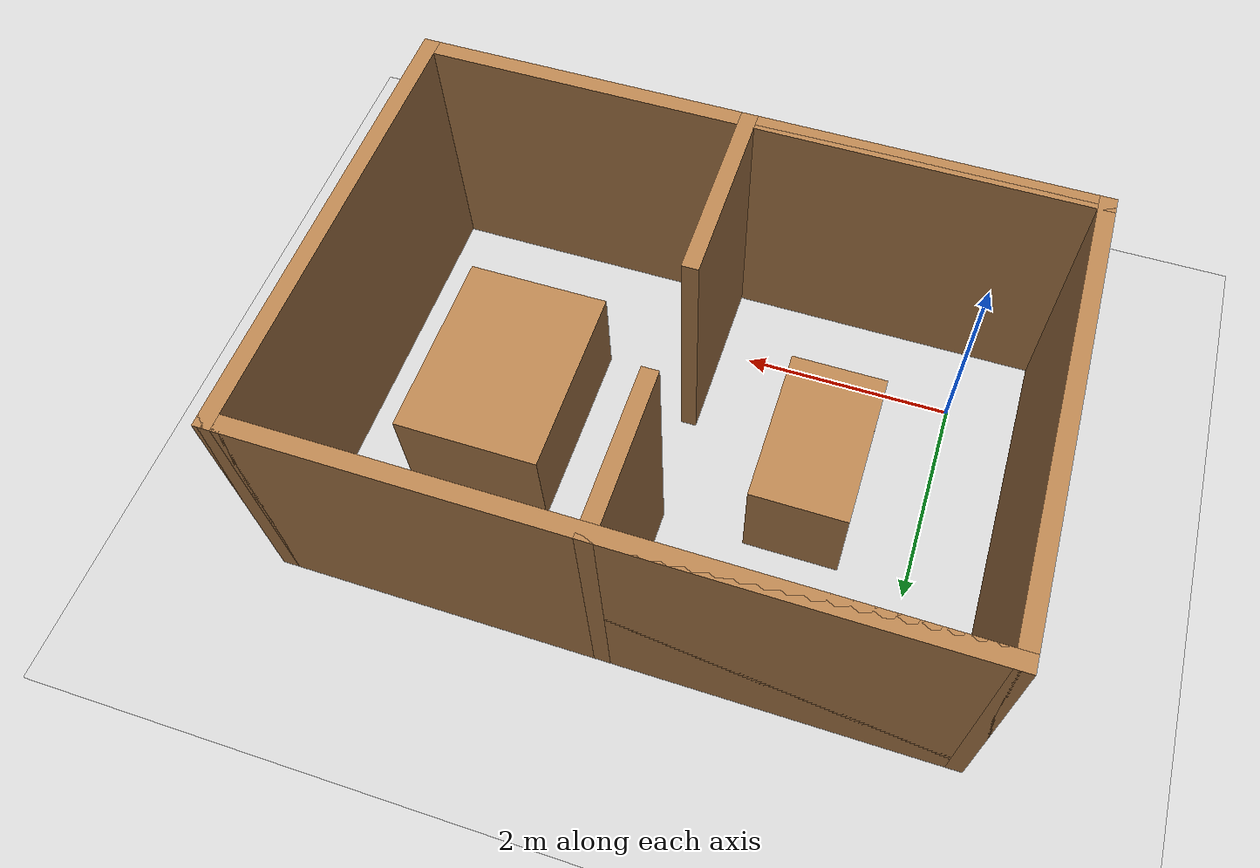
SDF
<sdf version="1.6">
 <world name="default">
  <light name="sun" type="directional">
   <pose>0 0 10 0 -0 0</pose>
   <diffuse>0.8 0.8 0.8 1</diffuse>
   <specular>0.2 0.2 0.2 1</specular>
   <attenuation>
    <range>1000</range>
    <constant>0.9</constant>
    <linear>0.01</linear>
    <quadratic>0.001</quadratic>
   </attenuation>
   <direction>-0.5 0.1 -0.9</direction>
  </light>
  <model name="ground_plane">
   <static>1</static>
   <link name="link">
    <collision name="collision">
     <geometry><plane><normal>0 0 1</normal><size>100 100</size></plane></geometry>
     <surface><friction><ode><mu>100</mu><mu2>50</mu2></ode></friction></surface>
    </collision>
    <visual name="visual">
     <cast_shadows>0</cast_shadows>
     <geometry><plane><normal>0 0 1</normal><size>100 100</size></plane></geometry>
     <material>
      <script><uri>file://media/materials/scripts/gazebo.material</uri><name>Gazebo/Grey</name></script>
     </material>
    </visual>
   </link>
  </model>
  <gravity>0 0 -9.8</gravity>
  <magnetic_field>6e-06 2.3e-05 -4.2e-05</magnetic_field>
  <atmosphere type="adiabatic"/>
  <physics name="default_physics" default="0" type="ode">
   <max_step_size>0.001</max_step_size>
   <real_time_factor>1</real_time_factor>
   <real_time_update_rate>1000</real_time_update_rate>
  </physics>
  <scene><ambient>0.4 0.4 0.4 1</ambient><background>0.7 0.7 0.7 1</background><shadows>1</shadows></scene>
  <spherical_coordinates>
   <surface_model>EARTH_WGS84</surface_model>
   <latitude_deg>0</latitude_deg>
   <longitude_deg>0</longitude_deg>
   <elevation>0</elevation>
   <heading_deg>0</heading_deg>
  </spherical_coordinates>
  <model name="newhouse">
   <pose>2.31745 1.24874 0 0 -0 0</pose>
   <link name="Wall_0">
    <collision name="Wall_0_Collision">
     <geometry><box><size>6 0.15 2.5</size></box></geometry>
     <pose>0 0 1.25 0 -0 0</pose>
    </collision>
    <visual name="Wall_0_Visual">
     <pose>0 0 1.25 0 -0 0</pose>
     <geometry><box><size>6 0.15 2.5</size></box></geometry>
     <material>
      <script><uri>file://media/materials/scripts/gazebo.material</uri><name>Gazebo/WoodFloor</name></script>
      <ambient>1 1 1 1</ambient>
     </material>
     <meta><layer>0</layer></meta>
    </visual>
    <pose>0.025 2.05 0 0 -0 0</pose>
   </link>
   <link name="Wall_12">
    <collision name="Wall_12_Collision">
     <geometry><box><size>3.25 0.15 2.5</size></box></geometry>
     <pose>0 0 1.25 0 -0 0</pose>
    </collision>
    <visual name="Wall_12_Visual">
     <pose>0 0 1.25 0 -0 0</pose>
     <geometry><box><size>3.25 0.15 2.5</size></box></geometry>
     <material>
      <script><uri>file://media/materials/scripts/gazebo.material</uri><name>Gazebo/WoodFloor</name></script>
      <ambient>1 1 1 1</ambient>
     </material>
     <meta><layer>0</layer></meta>
    </visual>
    <pose>-1.5 -2.05 0 0 -0 0</pose>
   </link>
   <link name="Wall_13">
    <collision name="Wall_13_Collision">
     <geometry><box><size>1.75 0.15 2.5</size></box></geometry>
     <pose>0 0 1.25 0 -0 0</pose>
    </collision>
    <visual name="Wall_13_Visual">
     <pose>0 0 1.25 0 -0 0</pose>
     <geometry><box><size>1.75 0.15 2.5</size></box></geometry>
     <material>
      <script><uri>file://media/materials/scripts/gazebo.material</uri><name>Gazebo/WoodFloor</name></script>
      <ambient>1 1 1 1</ambient>
     </material>
     <meta><layer>0</layer></meta>
    </visual>
    <pose>0.05 -1.25 0 0 -0 1.5708</pose>
   </link>
   <link name="Wall_3">
    <collision name="Wall_3_Collision">
     <geometry><box><size>0.25 0.15 2.5</size></box></geometry>
     <pose>0 0 1.25 0 -0 0</pose>
    </collision>
    <visual name="Wall_3_Visual">
     <pose>0 0 1.25 0 -0 0</pose>
     <geometry><box><size>0.25 0.15 2.5</size></box></geometry>
     <material>
      <script><uri>file://media/materials/scripts/gazebo.material</uri><name>Gazebo/WoodFloor</name></script>
      <ambient>1 1 1 1</ambient>
     </material>
     <meta><layer>0</layer></meta>
    </visual>
    <pose>3 2.05 0 0 -0 0</pose>
   </link>
   <link name="Wall_4">
    <collision name="Wall_4_Collision">
     <geometry><box><size>4.25 0.15 2.5</size></box></geometry>
     <pose>0 0 1.25 0 -0 0</pose>
    </collision>
    <visual name="Wall_4_Visual">
     <pose>0 0 1.25 0 -0 0</pose>
     <geometry><box><size>4.25 0.15 2.5</size></box></geometry>
     <material>
      <script><uri>file://media/materials/scripts/gazebo.material</uri><name>Gazebo/WoodFloor</name></script>
      <ambient>1 1 1 1</ambient>
     </material>
     <meta><layer>0</layer></meta>
    </visual>
    <pose>3.05 0 0 0 0 -1.5708</pose>
   </link>
   <link name="Wall_5">
    <collision name="Wall_5_Collision">
     <geometry><box><size>6.25 0.15 2.5</size></box></geometry>
     <pose>0 0 1.25 0 -0 0</pose>
    </collision>
    <visual name="Wall_5_Visual">
     <pose>0 0 1.25 0 -0 0</pose>
     <geometry><box><size>6.25 0.15 2.5</size></box></geometry>
     <material>
      <script><uri>file://media/materials/scripts/gazebo.material</uri><name>Gazebo/WoodFloor</name></script>
      <ambient>1 1 1 1</ambient>
     </material>
     <meta><layer>0</layer></meta>
    </visual>
    <pose>0 -2.05 0 0 -0 3.14159</pose>
   </link>
   <link name="Wall_6">
    <collision name="Wall_6_Collision">
     <geometry><box><size>4.25 0.15 2.5</size></box></geometry>
     <pose>0 0 1.25 0 -0 0</pose>
    </collision>
    <visual name="Wall_6_Visual">
     <pose>0 0 1.25 0 -0 0</pose>
     <geometry><box><size>4.25 0.15 2.5</size></box></geometry>
     <material>
      <script><uri>file://media/materials/scripts/gazebo.material</uri><name>Gazebo/WoodFloor</name></script>
      <ambient>1 1 1 1</ambient>
     </material>
     <meta><layer>0</layer></meta>
    </visual>
    <pose>-3.05 0 0 0 -0 1.5708</pose>
   </link>
   <link name="Wall_8">
    <collision name="Wall_8_Collision">
     <geometry><box><size>3.25 0.15 2.5</size></box></geometry>
     <pose>0 0 1.25 0 -0 0</pose>
    </collision>
    <visual name="Wall_8_Visual">
     <pose>0 0 1.25 0 -0 0</pose>
     <geometry><box><size>3.25 0.15 2.5</size></box></geometry>
     <material>
      <script><uri>file://media/materials/scripts/gazebo.material</uri><name>Gazebo/WoodFloor</name></script>
      <ambient>1 1 1 1</ambient>
     </material>
     <meta><layer>0</layer></meta>
    </visual>
    <pose>-1.5 2.05 0 0 -0 0</pose>
   </link>
   <link name="Wall_9">
    <collision name="Wall_9_Collision">
     <geometry><box><size>1.5 0.15 2.5</size></box></geometry>
     <pose>0 0 1.25 0 -0 0</pose>
    </collision>
    <visual name="Wall_9_Visual">
     <pose>0 0 1.25 0 -0 0</pose>
     <geometry><box><size>1.5 0.15 2.5</size></box></geometry>
     <material>
      <script><uri>file://media/materials/scripts/gazebo.material</uri><name>Gazebo/WoodFloor</name></script>
      <ambient>1 1 1 1</ambient>
     </material>
     <meta><layer>0</layer></meta>
    </visual>
    <pose>0.05 1.375 0 0 0 -1.5708</pose>
   </link>
   <static>1</static>
  </model>
  <model name="unit_box">
   <pose>0.55197 2.921 0.499996 3e-06 -9e-06 -0.001004</pose>
   <link name="link">
    <inertial>
     <mass>1</mass>
     <inertia>
      <ixx>0.166667</ixx>
      <ixy>0</ixy>
      <ixz>0</ixz>
      <iyy>0.166667</iyy>
      <iyz>0</iyz>
      <izz>0.166667</izz>
     </inertia>
    </inertial>
    <collision name="collision"><geometry><box><size>0.809348 0.514431 1</size></box></geometry></collision>
    <visual name="visual">
     <geometry><box><size>0.809348 0.514431 1</size></box></geometry>
     <material>
      <script><name>Gazebo/WoodFloor</name><uri>file://media/materials/scripts/gazebo.material</uri></script>
     </material>
    </visual>
   </link>
  </model>
  <model name="unit_box_0">
   <pose>1.06831 1.19502 0.5 0 0 -1.5e-05</pose>
   <link name="link">
    <inertial>
     <mass>1</mass>
     <inertia>
      <ixx>0.166667</ixx>
      <ixy>0</ixy>
      <ixz>0</ixz>
      <iyy>0.166667</iyy>
      <iyz>0</iyz>
      <izz>0.166667</izz>
     </inertia>
    </inertial>
    <collision name="collision"><geometry><box><size>0.891798 1.46913 1</size></box></geometry></collision>
    <visual name="visual">
     <geometry><box><size>0.891798 1.46913 1</size></box></geometry>
     <material>
      <script><name>Gazebo/WoodFloor</name><uri>file://media/materials/scripts/gazebo.material</uri></script>
     </material>
    </visual>
   </link>
  </model>
  <model name="unit_box_1">
   <pose>4.0031 1.30688 0.499994 -7e-06 0 0</pose>
   <link name="link">
    <inertial>
     <mass>1</mass>
     <inertia>
      <ixx>0.166667</ixx>
      <ixy>0</ixy>
      <ixz>0</ixz>
      <iyy>0.166667</iyy>
      <iyz>0</iyz>
      <izz>0.166667</izz>
     </inertia>
    </inertial>
    <collision name="collision"><geometry><box><size>1.35248 1.81269 1</size></box></geometry></collision>
    <visual name="visual">
     <geometry><box><size>1.35248 1.81269 1</size></box></geometry>
     <material>
      <script><name>Gazebo/WoodFloor</name><uri>file://media/materials/scripts/gazebo.material</uri></script>
     </material>
    </visual>
   </link>
  </model>
 </world>
</sdf>
